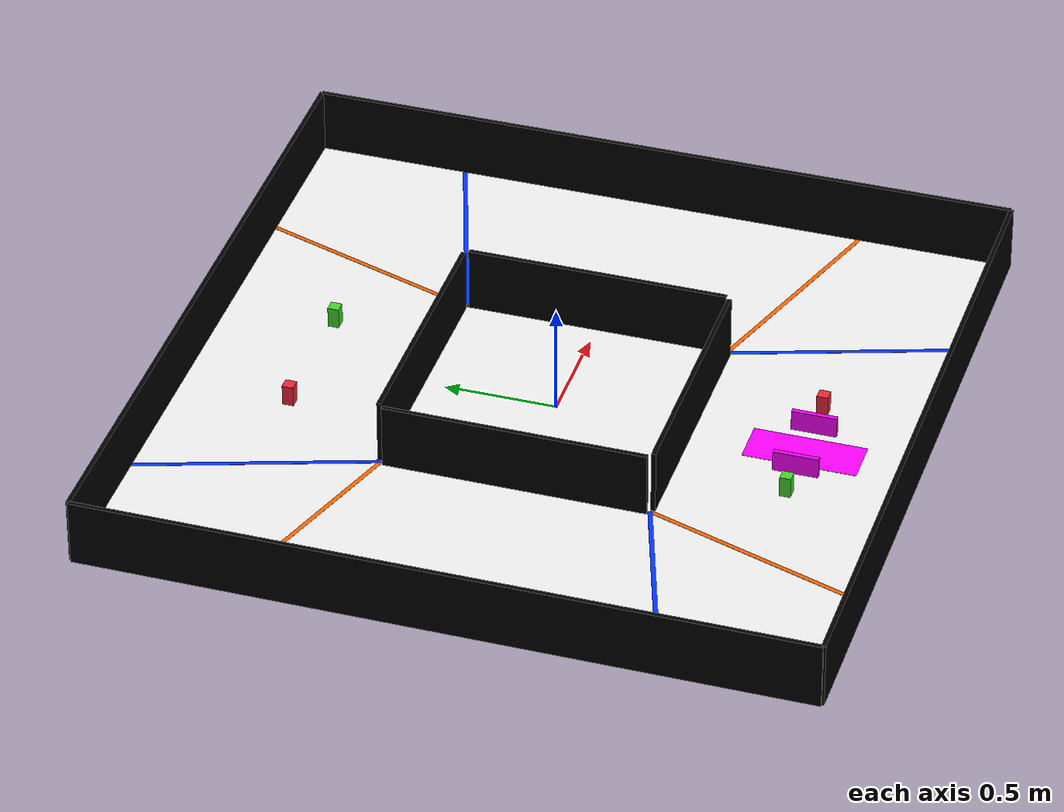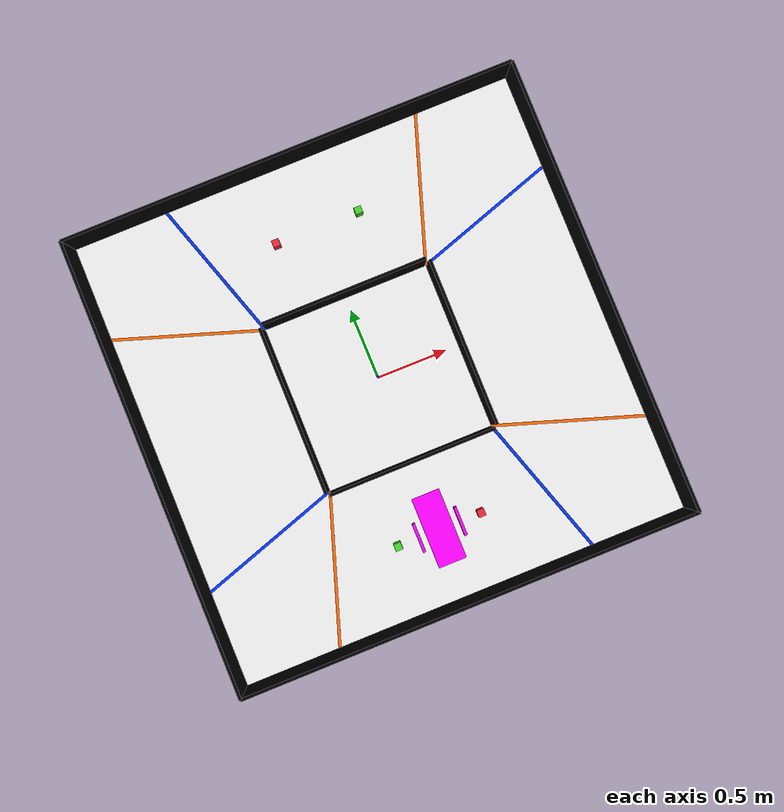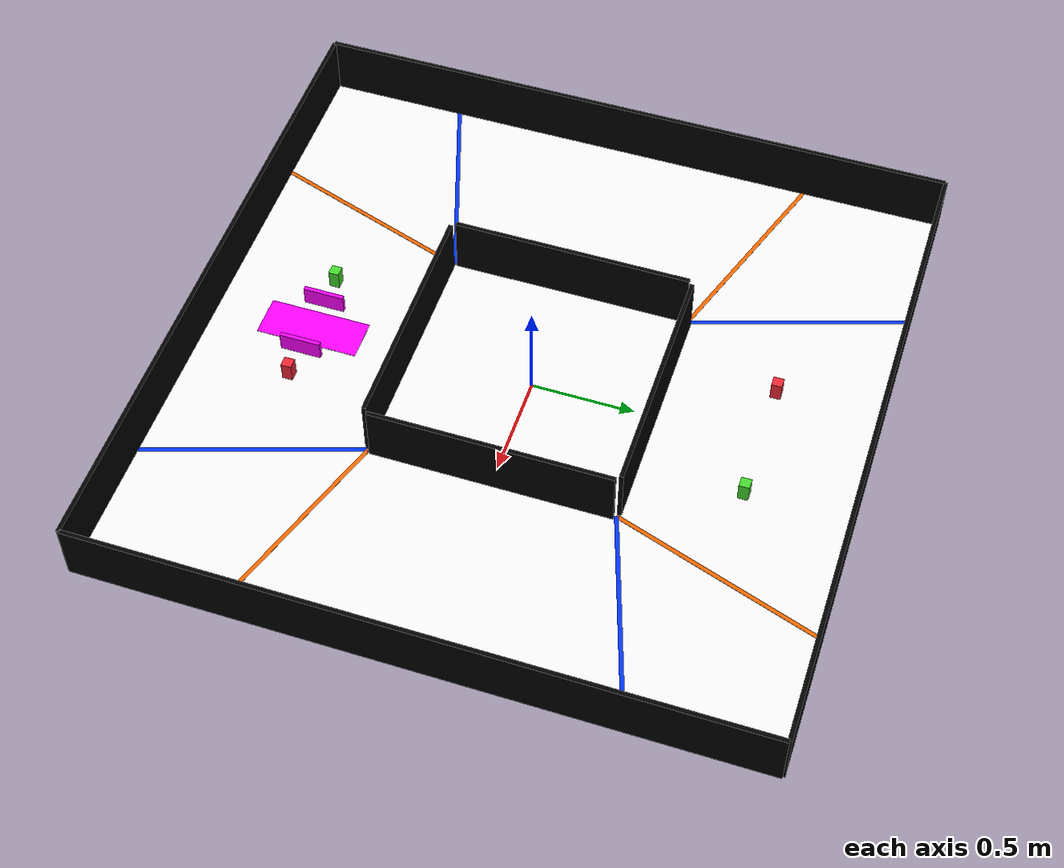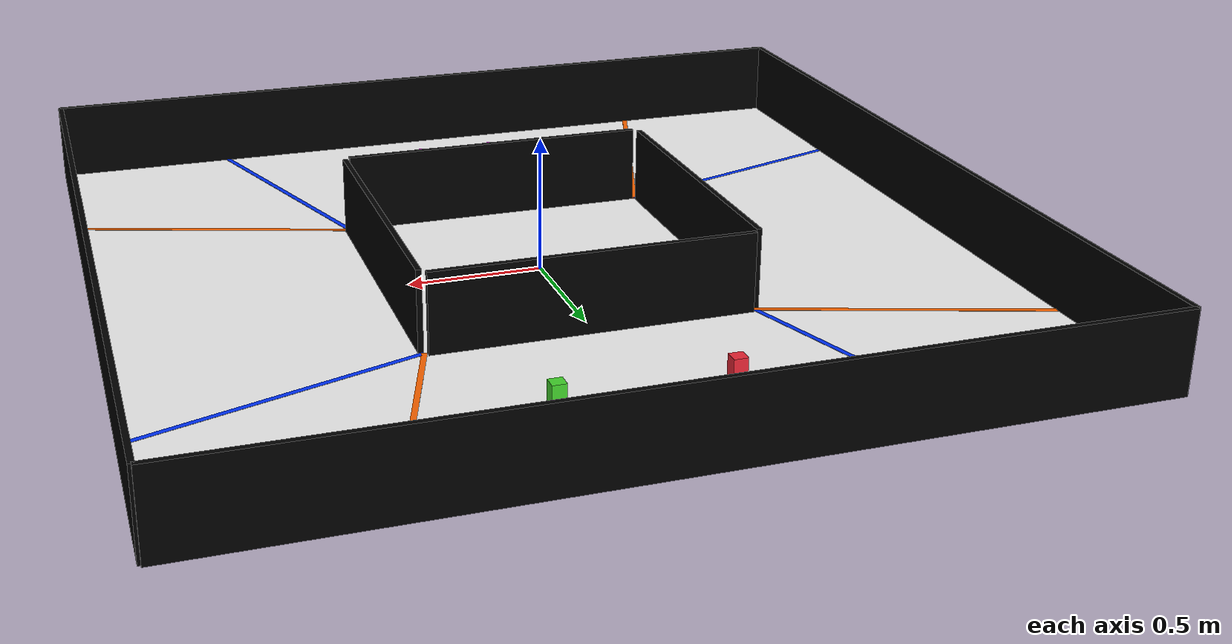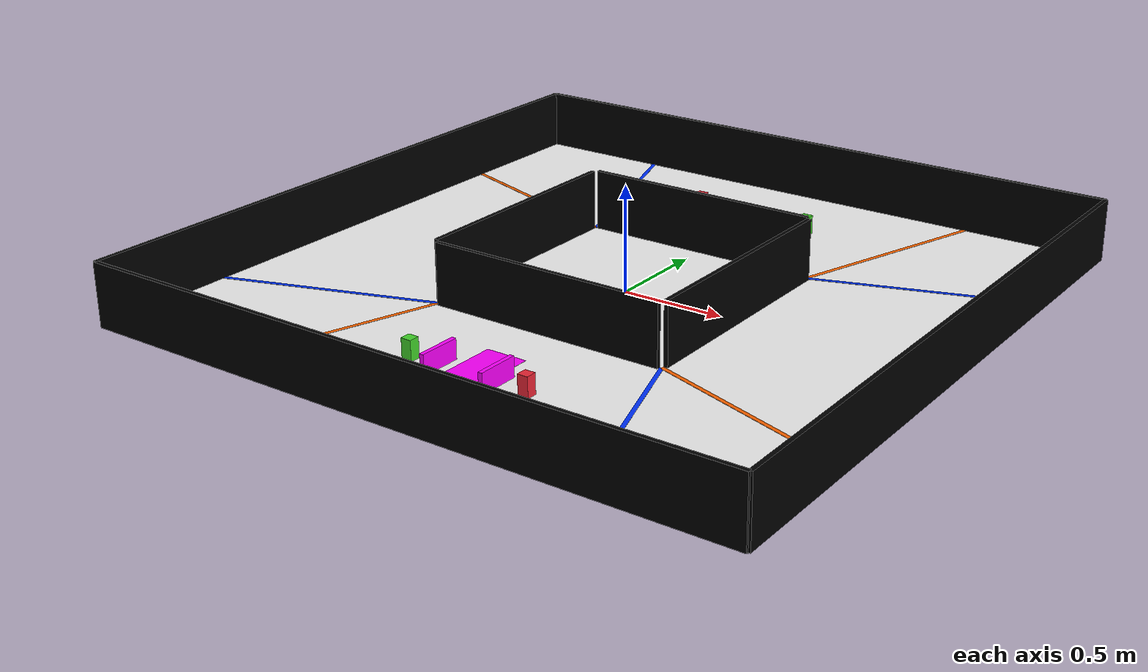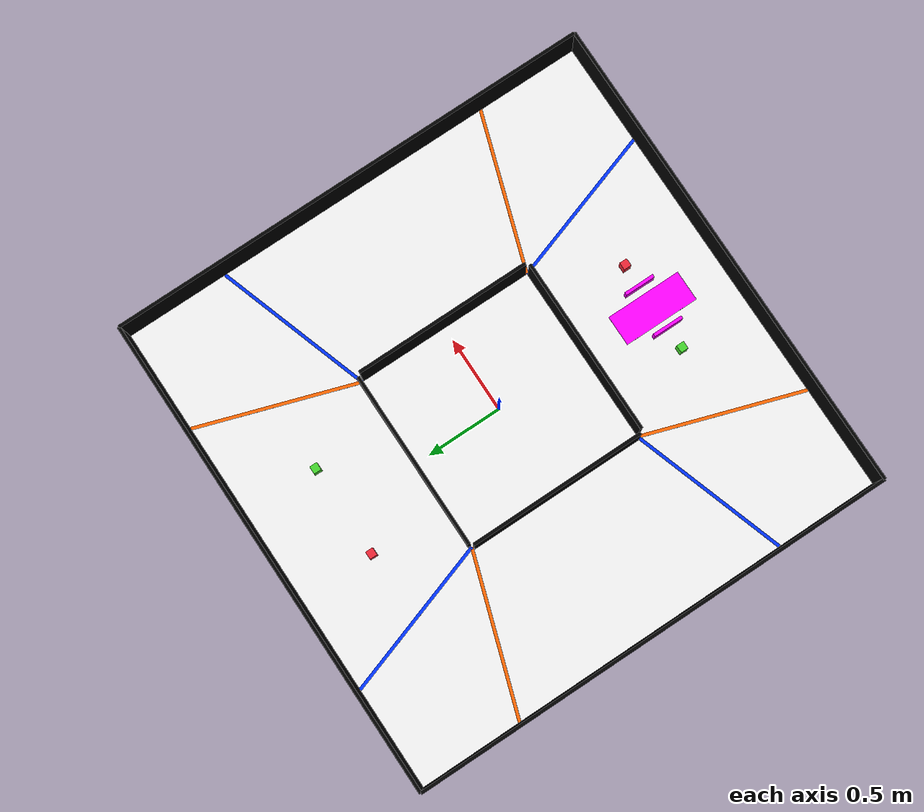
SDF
<sdf version="1.8">
 <world name="wro2026_obstacle_wide">
  <physics name="1ms" type="ignored">
   <max_step_size>0.001</max_step_size>
   <real_time_factor>1.0</real_time_factor>
  </physics>
  <plugin filename="gz-sim-physics-system" name="gz::sim::systems::Physics"/>
  <plugin filename="gz-sim-sensors-system" name="gz::sim::systems::Sensors">
   <render_engine>ogre2</render_engine>
  </plugin>
  <plugin filename="gz-sim-scene-broadcaster-system" name="gz::sim::systems::SceneBroadcaster"/>
  <plugin filename="gz-sim-user-commands-system" name="gz::sim::systems::UserCommands"/>
  <light name="sun" type="directional">
   <pose>0 0 10 0 0 0</pose>
   <diffuse>0.8 0.8 0.8 1</diffuse>
   <specular>0.2 0.2 0.2 1</specular>
   <direction>-0.5 0.1 -0.9</direction>
  </light>
  <model name="ground">
   <static>true</static>
   <link name="link">
    <collision name="col"><geometry><box><size>3.2 3.2 0.01</size></box></geometry></collision>
    <visual name="vis">
     <geometry><box><size>3.2 3.2 0.01</size></box></geometry>
     <material><ambient>0.95 0.95 0.95 1</ambient><diffuse>0.95 0.95 0.95 1</diffuse></material>
    </visual>
   </link>
  </model>
  <model name="wall_north">
   <static>true</static>
   <pose>0 1.6 0.15 0 0 0</pose>
   <link name="link">
    <collision name="col"><geometry><box><size>3.2 0.02 0.3</size></box></geometry></collision>
    <visual name="vis">
     <geometry><box><size>3.2 0.02 0.3</size></box></geometry>
     <material><ambient>0 0 0 1</ambient><diffuse>0 0 0 1</diffuse></material>
    </visual>
   </link>
  </model>
  <model name="wall_south">
   <static>true</static>
   <pose>0 -1.6 0.15 0 0 0</pose>
   <link name="link">
    <collision name="col"><geometry><box><size>3.2 0.02 0.3</size></box></geometry></collision>
    <visual name="vis">
     <geometry><box><size>3.2 0.02 0.3</size></box></geometry>
     <material><ambient>0 0 0 1</ambient><diffuse>0 0 0 1</diffuse></material>
    </visual>
   </link>
  </model>
  <model name="wall_east">
   <static>true</static>
   <pose>1.6 0 0.15 0 0 0</pose>
   <link name="link">
    <collision name="col"><geometry><box><size>0.02 3.2 0.3</size></box></geometry></collision>
    <visual name="vis">
     <geometry><box><size>0.02 3.2 0.3</size></box></geometry>
     <material><ambient>0 0 0 1</ambient><diffuse>0 0 0 1</diffuse></material>
    </visual>
   </link>
  </model>
  <model name="wall_west">
   <static>true</static>
   <pose>-1.6 0 0.15 0 0 0</pose>
   <link name="link">
    <collision name="col"><geometry><box><size>0.02 3.2 0.3</size></box></geometry></collision>
    <visual name="vis">
     <geometry><box><size>0.02 3.2 0.3</size></box></geometry>
     <material><ambient>0 0 0 1</ambient><diffuse>0 0 0 1</diffuse></material>
    </visual>
   </link>
  </model>
  <model name="inner_north">
   <static>true</static>
   <pose>0 0.6 0.15 0 0 0</pose>
   <link name="link">
    <collision name="col"><geometry><box><size>1.16 0.02 0.3</size></box></geometry></collision>
    <visual name="vis">
     <geometry><box><size>1.16 0.02 0.3</size></box></geometry>
     <material><ambient>0 0 0 1</ambient><diffuse>0 0 0 1</diffuse></material>
    </visual>
   </link>
  </model>
  <model name="inner_south">
   <static>true</static>
   <pose>0 -0.6 0.15 0 0 0</pose>
   <link name="link">
    <collision name="col"><geometry><box><size>1.16 0.02 0.3</size></box></geometry></collision>
    <visual name="vis">
     <geometry><box><size>1.16 0.02 0.3</size></box></geometry>
     <material><ambient>0 0 0 1</ambient><diffuse>0 0 0 1</diffuse></material>
    </visual>
   </link>
  </model>
  <model name="inner_east">
   <static>true</static>
   <pose>0.6 0 0.15 0 0 0</pose>
   <link name="link">
    <collision name="col"><geometry><box><size>0.02 1.16 0.3</size></box></geometry></collision>
    <visual name="vis">
     <geometry><box><size>0.02 1.16 0.3</size></box></geometry>
     <material><ambient>0 0 0 1</ambient><diffuse>0 0 0 1</diffuse></material>
    </visual>
   </link>
  </model>
  <model name="inner_west">
   <static>true</static>
   <pose>-0.6 0 0.15 0 0 0</pose>
   <link name="link">
    <collision name="col"><geometry><box><size>0.02 1.16 0.3</size></box></geometry></collision>
    <visual name="vis">
     <geometry><box><size>0.02 1.16 0.3</size></box></geometry>
     <material><ambient>0 0 0 1</ambient><diffuse>0 0 0 1</diffuse></material>
    </visual>
   </link>
  </model>
  <model name="start_zone">
   <static>true</static>
   <pose>0 -1.1 0.006 0 0 0</pose>
   <link name="link">
    <visual name="vis">
     <geometry><box><size>0.2 0.5 0.001</size></box></geometry>
     <material><ambient>1 0 1 1</ambient><diffuse>1 0 1 1</diffuse></material>
    </visual>
   </link>
  </model>
  <model name="parking_block_1">
   <static>true</static>
   <pose>0.15 -1.1 0.05 0 0 0</pose>
   <link name="link">
    <collision name="col"><geometry><box><size>0.02 0.2 0.1</size></box></geometry></collision>
    <visual name="vis">
     <geometry><box><size>0.02 0.2 0.1</size></box></geometry>
     <material><ambient>1 0 1 1</ambient><diffuse>1 0 1 1</diffuse></material>
    </visual>
   </link>
  </model>
  <model name="parking_block_2">
   <static>true</static>
   <pose>-0.15 -1.1 0.05 0 0 0</pose>
   <link name="link">
    <collision name="col"><geometry><box><size>0.02 0.2 0.1</size></box></geometry></collision>
    <visual name="vis">
     <geometry><box><size>0.02 0.2 0.1</size></box></geometry>
     <material><ambient>1 0 1 1</ambient><diffuse>1 0 1 1</diffuse></material>
    </visual>
   </link>
  </model>
  <model name="orange_line_nw">
   <static>true</static>
   <pose>-1.0900 0.7550 0.006 0 0 -0.3187</pose>
   <link name="link">
    <visual name="vis">
     <geometry><box><size>1.0530 0.02 0.001</size></box></geometry>
     <material><ambient>1.0 0.4 0 1</ambient><diffuse>1.0 0.4 0 1</diffuse></material>
    </visual>
   </link>
  </model>
  <model name="blue_line_nw">
   <static>true</static>
   <pose>-0.7550 1.0900 0.006 0 0 -1.2520</pose>
   <link name="link">
    <visual name="vis">
     <geometry><box><size>1.0530 0.02 0.001</size></box></geometry>
     <material><ambient>0 0.2 1.0 1</ambient><diffuse>0 0.2 1.0 1</diffuse></material>
    </visual>
   </link>
  </model>
  <model name="orange_line_ne">
   <static>true</static>
   <pose>0.7550 1.0900 0.006 0 0 -1.8895</pose>
   <link name="link">
    <visual name="vis">
     <geometry><box><size>1.0530 0.02 0.001</size></box></geometry>
     <material><ambient>1.0 0.4 0 1</ambient><diffuse>1.0 0.4 0 1</diffuse></material>
    </visual>
   </link>
  </model>
  <model name="blue_line_ne">
   <static>true</static>
   <pose>1.0900 0.7550 0.006 0 0 -2.8228</pose>
   <link name="link">
    <visual name="vis">
     <geometry><box><size>1.0530 0.02 0.001</size></box></geometry>
     <material><ambient>0 0.2 1.0 1</ambient><diffuse>0 0.2 1.0 1</diffuse></material>
    </visual>
   </link>
  </model>
  <model name="orange_line_se">
   <static>true</static>
   <pose>1.0900 -0.7550 0.006 0 0 2.8228</pose>
   <link name="link">
    <visual name="vis">
     <geometry><box><size>1.0530 0.02 0.001</size></box></geometry>
     <material><ambient>1.0 0.4 0 1</ambient><diffuse>1.0 0.4 0 1</diffuse></material>
    </visual>
   </link>
  </model>
  <model name="blue_line_se">
   <static>true</static>
   <pose>0.7550 -1.0900 0.006 0 0 1.8895</pose>
   <link name="link">
    <visual name="vis">
     <geometry><box><size>1.0530 0.02 0.001</size></box></geometry>
     <material><ambient>0 0.2 1.0 1</ambient><diffuse>0 0.2 1.0 1</diffuse></material>
    </visual>
   </link>
  </model>
  <model name="orange_line_sw">
   <static>true</static>
   <pose>-0.7550 -1.0900 0.006 0 0 1.2520</pose>
   <link name="link">
    <visual name="vis">
     <geometry><box><size>1.0530 0.02 0.001</size></box></geometry>
     <material><ambient>1.0 0.4 0 1</ambient><diffuse>1.0 0.4 0 1</diffuse></material>
    </visual>
   </link>
  </model>
  <model name="blue_line_sw">
   <static>true</static>
   <pose>-1.0900 -0.7550 0.006 0 0 0.3187</pose>
   <link name="link">
    <visual name="vis">
     <geometry><box><size>1.0530 0.02 0.001</size></box></geometry>
     <material><ambient>0 0.2 1.0 1</ambient><diffuse>0 0.2 1.0 1</diffuse></material>
    </visual>
   </link>
  </model>
  <model name="pillar_red_1">
   <static>true</static>
   <pose>0.3 -1.1 0.05 0 0 0</pose>
   <link name="link">
    <collision name="col"><geometry><box><size>0.05 0.05 0.1</size></box></geometry></collision>
    <visual name="vis">
     <geometry><box><size>0.05 0.05 0.1</size></box></geometry>
     <material><ambient>0.933 0.153 0.216 1</ambient><diffuse>0.933 0.153 0.216 1</diffuse></material>
    </visual>
   </link>
  </model>
  <model name="pillar_red_2">
   <static>true</static>
   <pose>-0.3 1.1 0.05 0 0 0</pose>
   <link name="link">
    <collision name="col"><geometry><box><size>0.05 0.05 0.1</size></box></geometry></collision>
    <visual name="vis">
     <geometry><box><size>0.05 0.05 0.1</size></box></geometry>
     <material><ambient>0.933 0.153 0.216 1</ambient><diffuse>0.933 0.153 0.216 1</diffuse></material>
    </visual>
   </link>
  </model>
  <model name="pillar_green_1">
   <static>true</static>
   <pose>-0.3 -1.1 0.05 0 0 0</pose>
   <link name="link">
    <collision name="col"><geometry><box><size>0.05 0.05 0.1</size></box></geometry></collision>
    <visual name="vis">
     <geometry><box><size>0.05 0.05 0.1</size></box></geometry>
     <material><ambient>0.267 0.839 0.173 1</ambient><diffuse>0.267 0.839 0.173 1</diffuse></material>
    </visual>
   </link>
  </model>
  <model name="pillar_green_2">
   <static>true</static>
   <pose>0.3 1.1 0.05 0 0 0</pose>
   <link name="link">
    <collision name="col"><geometry><box><size>0.05 0.05 0.1</size></box></geometry></collision>
    <visual name="vis">
     <geometry><box><size>0.05 0.05 0.1</size></box></geometry>
     <material><ambient>0.267 0.839 0.173 1</ambient><diffuse>0.267 0.839 0.173 1</diffuse></material>
    </visual>
   </link>
  </model>
 </world>
</sdf>
